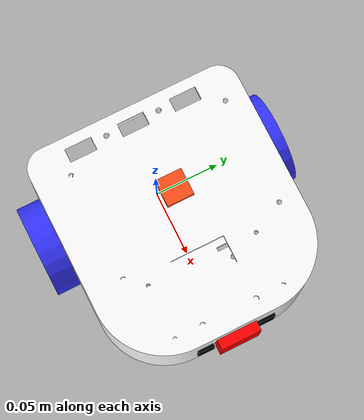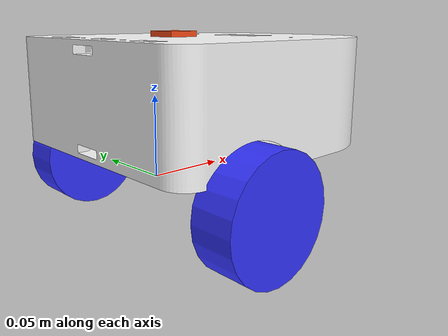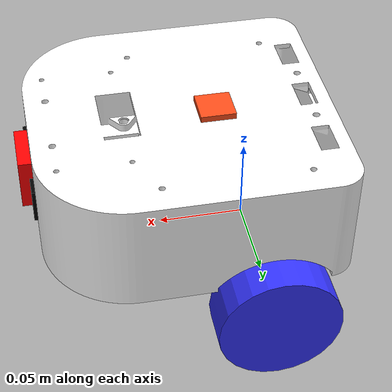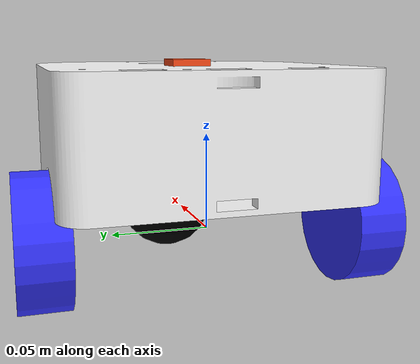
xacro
<?xml version="1.0"?>
<robot xmlns:xacro="http://www.ros.org/wiki/xacro" name="robot">

    <!-- 'red' lo referencia camera.xacro pero se define aca (no esta en robot_core). -->
    <material name="red">
        <color rgba="1 0 0 1"/>
    </material>

    <xacro:include filename="robot_core.xacro" />
    <xacro:include filename="camera.xacro" />
    <xacro:include filename="imu.xacro" />
    <xacro:include filename="tof.xacro" />

</robot>

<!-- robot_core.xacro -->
<robot xmlns:xacro="http://www.ros.org/wiki/xacro" >

    <xacro:include filename="inertial_macros.xacro"/>

    <material name="white">
        <color rgba="1 1 1 1" />
    </material>

    <material name="orange">
        <color rgba="1 0.3 0.1 1" />
    </material>

    <material name="blue">
        <color rgba="0.2 0.2 1 1" />
    </material>

    <material name="black">
        <color rgba="0 0 0 1" />
    </material>

    <!-- BASE LINK -->
    <link name="base_link"/>

    <!-- BASE_FOOTPRINT LINK -->
    <joint name="base_footprint_joint" type="fixed">
        <parent link="base_link"/>
        <child link="base_footprint"/>
        <origin xyz="0 0 0" rpy="0 0 0"/>
    </joint>

    <!-- FIX: el original tenÃ­a '/' como contenido del link, que es texto suelto invalido. -->
    <link name="base_footprint"/>

    <joint name="chassis_joint" type="fixed">
        <parent link="base_link"/>
        <child link="chassis"/>
        <origin xyz="0 0 0"/>
    </joint>

    <link name="chassis">
        <visual>
            <origin xyz="-0.047 -0.08 0.084" rpy="0 0 ${pi/2}"/>
            <geometry>
                <mesh filename="package://test_bot/meshes/base_link.stl" scale="0.001 0.001 0.001"/>
            </geometry>
            <material name="white"/>
        </visual>
        <collision>
            <origin xyz="-0.047 -0.08 0.084" rpy="0 0 ${pi/2}"/>
            <geometry>
                <mesh filename="package://test_bot/meshes/base_link.stl" scale="0.001 0.001 0.001"/>
            </geometry>
        </collision>
        <inertial>
            <origin xyz="0.0352 0.0 0.0523" rpy="0 0 0"/>
            <mass value="0.23692"/>
            <inertia ixx="0.000822" iyy="0.000915" izz="0.001442"
                     ixy="0.0" ixz="6e-06" iyz="0.0"/>
        </inertial>
    </link>

    <gazebo reference="chassis">
        <material>Gazebo/White</material>
    </gazebo>

    <joint name="left_wheel_joint" type="continuous">
        <parent link="base_link"/>
        <child link="left_wheel"/>
        <origin xyz="0 0.085 0" rpy="-${pi/2} 0 0" />
        <axis xyz="0 0 1"/>
        <!-- FIX: damping evita micro-movimientos espurios del simulador en reposo -->
        <dynamics damping="0.05" friction="0.01"/>
    </joint>

    <link name="left_wheel">
        <visual>
            <geometry>
                <cylinder radius ="0.035" length="0.026"/>
            </geometry>
            <material name="blue" />
        </visual>
        <collision>
            <geometry>
                <cylinder radius ="0.035" length="0.026"/>
            </geometry>
        </collision>
        <xacro:inertial_cylinder mass="0.034" length="0.026" radius="0.035">
            <origin xyz="0 0 0" rpy="0 0 0" />
        </xacro:inertial_cylinder>
    </link>

    <gazebo reference="left_wheel">
        <material>Gazebo/Blue</material>
        <mu1>1.0</mu1>
        <mu2>1.0</mu2>
        <kp>1000000.0</kp>
        <kd>100.0</kd>
        <minDepth>0.001</minDepth>
        <maxVel>0.1</maxVel>
    </gazebo>

    <!-- RIGHT WHEEL LINK -->
    <joint name="right_wheel_joint" type="continuous">
        <parent link="base_link"/>
        <child link="right_wheel"/>
        <origin xyz="0 -0.085 0" rpy="${pi/2} 0 0" />
        <axis xyz="0 0 -1"/>
        <dynamics damping="0.05" friction="0.01"/>
    </joint>

    <link name="right_wheel">
        <visual>
            <geometry>
                <cylinder radius ="0.035" length="0.026"/>
            </geometry>
            <material name="blue" />
        </visual>
        <collision>
            <geometry>
                <cylinder radius ="0.035" length="0.026"/>
            </geometry>
        </collision>
        <xacro:inertial_cylinder mass="0.034" length="0.026" radius="0.035">
            <origin xyz="0 0 0" rpy="0 0 0" />
        </xacro:inertial_cylinder>
    </link>

    <gazebo reference="right_wheel">
        <material>Gazebo/Blue</material>
        <mu1>1.0</mu1>
        <mu2>1.0</mu2>
        <kp>1000000.0</kp>
        <kd>100.0</kd>
        <minDepth>0.001</minDepth>
        <maxVel>0.1</maxVel>
    </gazebo>

    <joint name="caster_wheel_joint" type="fixed">
        <parent link="chassis"/>
        <child link="caster_wheel"/>
        <origin xyz="0.09 0 -0.006"/>
    </joint>

    <link name="caster_wheel">
        <visual>
            <geometry>
                <sphere radius="0.029"/>
            </geometry>
            <material name="black" />
        </visual>
        <collision>
            <geometry>
                <sphere radius="0.029"/>
            </geometry>
        </collision>
        <xacro:inertial_sphere mass="0.01" radius="0.029">
            <origin xyz="0 0 0" rpy="0 0 0"/>
        </xacro:inertial_sphere>
    </link>

    <gazebo reference="caster_wheel">
        <material>Gazebo/Black</material>
        <mu1 value="0.001"/>
        <mu2 value="0.001"/>
    </gazebo>

</robot>

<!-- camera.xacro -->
<robot xmlns:xacro="http://www.ros.org/wiki/xacro" >

    <joint name="camera_joint" type="fixed">
        <parent link="chassis"/>
        <child link="camera_link"/>
        <origin xyz="0.1255 0 0.0545" rpy="0 0 0"/>
    </joint>

    <link name="camera_link">
        <visual>
            <geometry>
                <box size="0.010 0.03 0.03"/>
            </geometry>
            <material name="red"/>
        </visual>
        <collision>
            <geometry>
                <box size ="0.01 0.03 0.03"/>
            </geometry>
        </collision>
        <xacro:inertial_box mass="0.1" x="0.01" y="0.03" z="0.03">
            <origin xyz="0 0 0" rpy="0 0 0"/>
        </xacro:inertial_box>
    </link>

    <joint name="camera_optical_joint" type="fixed">
        <parent link="camera_link"/>
        <child link="camera_link_optical"/>
        <origin xyz="0 0 0" rpy="${-pi/2} 0 ${-pi/2}"/>
    </joint>

    <link name="camera_link_optical"></link>

    <gazebo reference="camera_link">
        <material>Gazebo/Red</material>

        <sensor name="camera" type="camera">
            <pose> 0 0 0 0 0 0 </pose>
            <visualize>true</visualize>
            <update_rate>30</update_rate>
            <camera>
                <horizontal_fov>1.3439</horizontal_fov>
                <image>
                    <format>R8G8B8</format>
                    <width>1280</width>
                    <height>720</height>
                </image>
                <clip>
                    <near>0.05</near>
                    <far>8.0</far>
                </clip>
            </camera>
            <plugin name="camera_controller" filename="libgazebo_ros_camera.so">
                <frame_name>camera_link_optical</frame_name>
            </plugin>
        </sensor>
    </gazebo>

</robot>

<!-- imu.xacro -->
<robot xmlns:xacro="http://www.ros.org/wiki/xacro">

    <!-- Posicion del CAD v2: la IMU fisica vive en el PCB del ESP32
         (malla sim_pcb_v5, centro en (0.019, 0.005, 0.085) de base_link,
         sobre el deck superior). -->
    <joint name="imu_joint" type="fixed">
        <parent link="base_link"/>
        <child link="imu_link"/>
        <origin xyz="0.019 0.005 0.085" rpy="0 0 0"/>
    </joint>

    <link name="imu_link">
        <visual>
            <geometry>
                <box size="0.02 0.02 0.005"/>
            </geometry>
            <material name="orange"/>
        </visual>
        <xacro:inertial_box mass="0.01" x="0.02" y="0.02" z="0.005">
            <origin xyz="0 0 0" rpy="0 0 0"/>
        </xacro:inertial_box>
    </link>

    <gazebo reference="imu_link">
        <material>Gazebo/Orange</material>
        <gravity>true</gravity>
        <sensor name="imu_sensor" type="imu">
            <always_on>true</always_on>
            <update_rate>100</update_rate>
            <visualize>false</visualize>
            <imu>
                <angular_velocity>
                    <x><noise type="gaussian"><mean>0.0</mean><stddev>0.05</stddev></noise></x>
                    <y><noise type="gaussian"><mean>0.0</mean><stddev>0.112</stddev></noise></y>
                    <z><noise type="gaussian"><mean>0.0</mean><stddev>0.073</stddev></noise></z>
                </angular_velocity>
                <linear_acceleration>
                    <x><noise type="gaussian"><mean>0.0</mean><stddev>0.008</stddev></noise></x>
                    <y><noise type="gaussian"><mean>0.0</mean><stddev>0.011</stddev></noise></y>
                    <z><noise type="gaussian"><mean>0.0</mean><stddev>0.013</stddev></noise></z>
                </linear_acceleration>
            </imu>
            <plugin name="imu_plugin" filename="libgazebo_ros_imu_sensor.so">
                <ros>
                    <remapping>~/out:=imu/data</remapping>
                </ros>
                <initial_orientation_as_reference>false</initial_orientation_as_reference>
                <frame_name>imu_link</frame_name>
            </plugin>
        </sensor>
    </gazebo>

</robot>

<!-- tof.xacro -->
<robot xmlns:xacro="http://www.ros.org/wiki/xacro">

    <joint name="tof_left_joint" type="fixed">
        <parent link="base_link"/>
        <child link="tof_left_link"/>
        <origin xyz="0.123 0.0234 0.051" rpy="0 0 0"/>
    </joint>

    <link name="tof_left_link">
        <visual>
            <geometry>
                <box size="0.004 0.012 0.02"/>
            </geometry>
            <material name="black"/>
        </visual>
    </link>

    <joint name="tof_right_joint" type="fixed">
        <parent link="base_link"/>
        <child link="tof_right_link"/>
        <origin xyz="0.123 -0.0234 0.051" rpy="0 0 0"/>
    </joint>

    <link name="tof_right_link">
        <visual>
            <geometry>
                <box size="0.004 0.012 0.02"/>
            </geometry>
            <material name="black"/>
        </visual>
    </link>

</robot>
